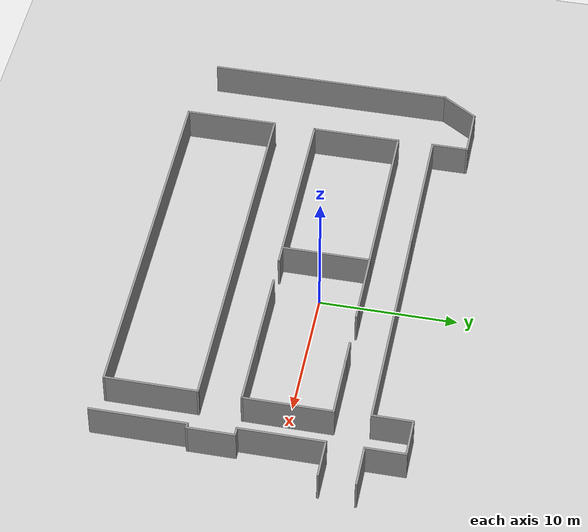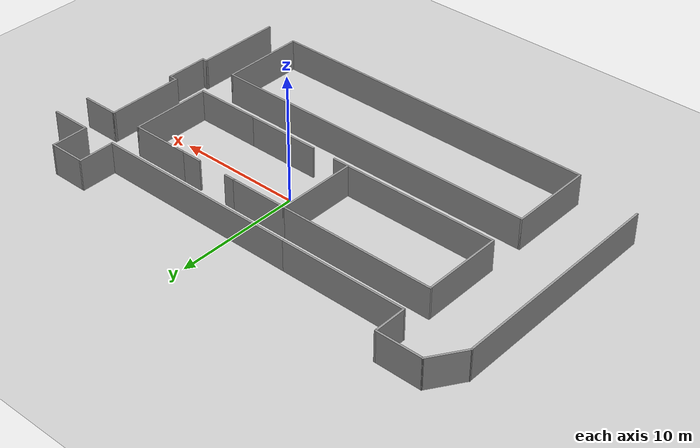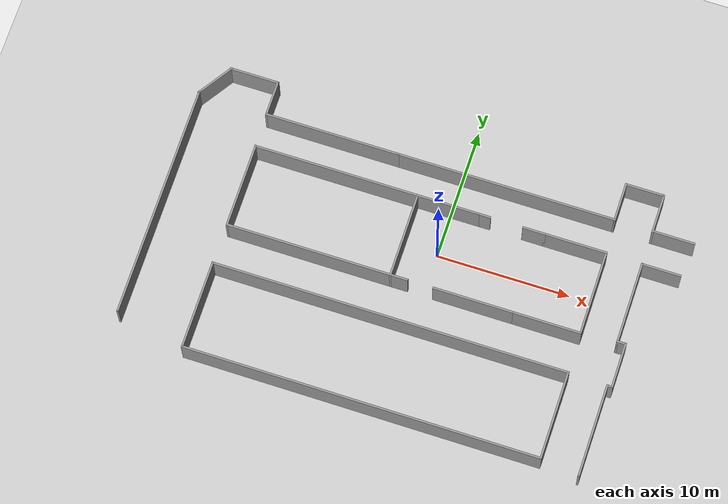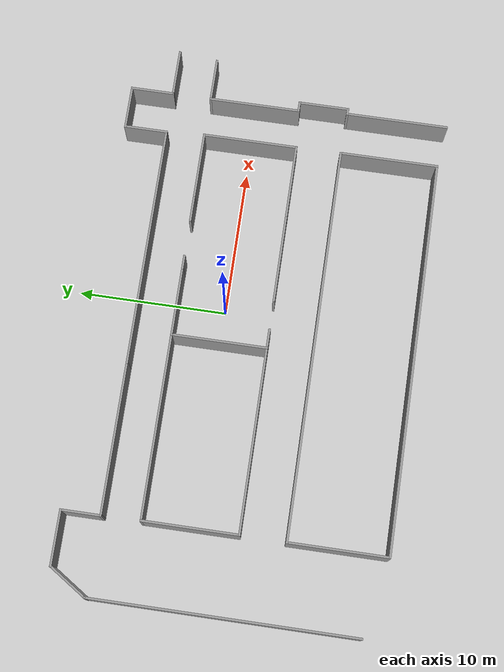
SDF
<sdf version="1.6">
 <world name="default">
  <light name="sun" type="directional">
   <pose>0 0 10 0 -0 0</pose>
   <diffuse>0.8 0.8 0.8 1</diffuse>
   <specular>0.2 0.2 0.2 1</specular>
   <attenuation>
    <range>1000</range>
    <constant>0.9</constant>
    <linear>0.01</linear>
    <quadratic>0.001</quadratic>
   </attenuation>
   <direction>-0.5 0.1 -0.9</direction>
  </light>
  <model name="ground_plane">
   <static>1</static>
   <link name="link">
    <collision name="collision">
     <geometry><plane><normal>0 0 1</normal><size>100 100</size></plane></geometry>
     <surface>
      <contact><collide_bitmask>65535</collide_bitmask></contact>
      <friction><ode><mu>100</mu><mu2>50</mu2></ode></friction>
     </surface>
    </collision>
    <visual name="visual">
     <cast_shadows>0</cast_shadows>
     <geometry><plane><normal>0 0 1</normal><size>100 100</size></plane></geometry>
     <material>
      <script><uri>file://media/materials/scripts/gazebo.material</uri><name>Gazebo/Grey</name></script>
     </material>
    </visual>
   </link>
  </model>
  <gravity>0 0 -9.8</gravity>
  <magnetic_field>6e-06 2.3e-05 -4.2e-05</magnetic_field>
  <atmosphere type="adiabatic"/>
  <physics name="default_physics" default="0" type="ode">
   <max_step_size>0.001</max_step_size>
   <real_time_factor>1</real_time_factor>
   <real_time_update_rate>1000</real_time_update_rate>
  </physics>
  <scene><ambient>0.4 0.4 0.4 1</ambient><background>0.7 0.7 0.7 1</background><shadows>1</shadows></scene>
  <audio><device>default</device></audio>
  <spherical_coordinates>
   <surface_model>EARTH_WGS84</surface_model>
   <latitude_deg>0</latitude_deg>
   <longitude_deg>0</longitude_deg>
   <elevation>0</elevation>
   <heading_deg>0</heading_deg>
  </spherical_coordinates>
  <model name="Sarkeys_Model">
   <pose>-1.35909 -2.27678 0 0 -0 0</pose>
   <link name="Wall_32">
    <collision name="Wall_32_Collision">
     <geometry><box><size>4.75 0.15 2.5</size></box></geometry>
     <pose>0 0 1.25 0 -0 0</pose>
    </collision>
    <visual name="Wall_32_Visual">
     <pose>0 0 1.25 0 -0 0</pose>
     <geometry><box><size>4.75 0.15 2.5</size></box></geometry>
     <material>
      <script><uri>file://media/materials/scripts/gazebo.material</uri><name>Gazebo/Grey</name></script>
      <ambient>1 1 1 1</ambient>
     </material>
     <meta><layer>0</layer></meta>
    </visual>
    <pose>1.13149 5.44774 0 0 -0 0</pose>
   </link>
   <link name="Wall_36">
    <collision name="Wall_36_Collision">
     <geometry><box><size>6.5 0.15 2.5</size></box></geometry>
     <pose>0 0 1.25 0 -0 0</pose>
    </collision>
    <visual name="Wall_36_Visual">
     <pose>0 0 1.25 0 -0 0</pose>
     <geometry><box><size>6.5 0.15 2.5</size></box></geometry>
     <material>
      <script><uri>file://media/materials/scripts/gazebo.material</uri><name>Gazebo/Grey</name></script>
      <ambient>1 1 1 1</ambient>
     </material>
     <meta><layer>0</layer></meta>
    </visual>
    <pose>-1.16851 2.27274 0 0 -0 -1.5708</pose>
   </link>
   <link name="Wall_48">
    <collision name="Wall_48_Collision">
     <geometry><box><size>16.5 0.15 2.5</size></box></geometry>
     <pose>0 0 1.25 0 -0 0</pose>
    </collision>
    <visual name="Wall_48_Visual">
     <pose>0 0 1.25 0 -0 0</pose>
     <geometry><box><size>16.5 0.15 2.5</size></box></geometry>
     <material>
      <script><uri>file://media/materials/scripts/gazebo.material</uri><name>Gazebo/Grey</name></script>
      <ambient>1 1 1 1</ambient>
     </material>
     <meta><layer>0</layer></meta>
    </visual>
    <pose>4.70026 8.04291 0 0 -0 0</pose>
   </link>
   <link name="Wall_49">
    <collision name="Wall_49_Collision">
     <geometry><box><size>3 0.15 2.5</size></box></geometry>
     <pose>0 0 1.25 0 -0 0</pose>
    </collision>
    <visual name="Wall_49_Visual">
     <pose>0 0 1.25 0 -0 0</pose>
     <geometry><box><size>3 0.15 2.5</size></box></geometry>
     <material>
      <script><uri>file://media/materials/scripts/gazebo.material</uri><name>Gazebo/Grey</name></script>
      <ambient>1 1 1 1</ambient>
     </material>
     <meta><layer>0</layer></meta>
    </visual>
    <pose>12.8753 9.46791 0 0 -0 1.5708</pose>
   </link>
   <link name="Wall_50">
    <collision name="Wall_50_Collision">
     <geometry><box><size>3 0.15 2.5</size></box></geometry>
     <pose>0 0 1.25 0 -0 0</pose>
    </collision>
    <visual name="Wall_50_Visual">
     <pose>0 0 1.25 0 -0 0</pose>
     <geometry><box><size>3 0.15 2.5</size></box></geometry>
     <material>
      <script><uri>file://media/materials/scripts/gazebo.material</uri><name>Gazebo/Grey</name></script>
      <ambient>1 1 1 1</ambient>
     </material>
     <meta><layer>0</layer></meta>
    </visual>
    <pose>14.3003 10.8929 0 0 -0 0</pose>
   </link>
   <link name="Wall_51">
    <collision name="Wall_51_Collision">
     <geometry><box><size>3 0.15 2.5</size></box></geometry>
     <pose>0 0 1.25 0 -0 0</pose>
    </collision>
    <visual name="Wall_51_Visual">
     <pose>0 0 1.25 0 -0 0</pose>
     <geometry><box><size>3 0.15 2.5</size></box></geometry>
     <material>
      <script><uri>file://media/materials/scripts/gazebo.material</uri><name>Gazebo/Grey</name></script>
      <ambient>1 1 1 1</ambient>
     </material>
     <meta><layer>0</layer></meta>
    </visual>
    <pose>15.7253 9.46791 0 0 -0 -1.5708</pose>
   </link>
   <link name="Wall_52">
    <collision name="Wall_52_Collision">
     <geometry><box><size>3.25 0.15 2.5</size></box></geometry>
     <pose>0 0 1.25 0 -0 0</pose>
    </collision>
    <visual name="Wall_52_Visual">
     <pose>0 0 1.25 0 -0 0</pose>
     <geometry><box><size>3.25 0.15 2.5</size></box></geometry>
     <material>
      <script><uri>file://media/materials/scripts/gazebo.material</uri><name>Gazebo/Grey</name></script>
      <ambient>1 1 1 1</ambient>
     </material>
     <meta><layer>0</layer></meta>
    </visual>
    <pose>17.2753 8.04291 0 0 -0 0</pose>
   </link>
   <link name="Wall_54">
    <collision name="Wall_54_Collision">
     <geometry><box><size>10.25 0.15 2.5</size></box></geometry>
     <pose>0 0 1.25 0 -0 0</pose>
    </collision>
    <visual name="Wall_54_Visual">
     <pose>0 0 1.25 0 -0 0</pose>
     <geometry><box><size>10.25 0.15 2.5</size></box></geometry>
     <material>
      <script><uri>file://media/materials/scripts/gazebo.material</uri><name>Gazebo/Grey</name></script>
      <ambient>1 1 1 1</ambient>
     </material>
     <meta><layer>0</layer></meta>
    </visual>
    <pose>-8.52474 8.04291 0 0 -0 3.14159</pose>
   </link>
   <link name="Wall_56">
    <collision name="Wall_56_Collision">
     <geometry><box><size>12.5 0.15 2.5</size></box></geometry>
     <pose>0 0 1.25 0 -0 0</pose>
    </collision>
    <visual name="Wall_56_Visual">
     <pose>0 0 1.25 0 -0 0</pose>
     <geometry><box><size>12.5 0.15 2.5</size></box></geometry>
     <material>
      <script><uri>file://media/materials/scripts/gazebo.material</uri><name>Gazebo/Grey</name></script>
      <ambient>1 1 1 1</ambient>
     </material>
     <meta><layer>0</layer></meta>
    </visual>
    <pose>-7.34351 5.44774 0 0 -0 3.14159</pose>
   </link>
   <link name="Wall_57">
    <collision name="Wall_57_Collision">
     <geometry><box><size>6.5 0.15 2.5</size></box></geometry>
     <pose>0 0 1.25 0 -0 0</pose>
    </collision>
    <visual name="Wall_57_Visual">
     <pose>0 0 1.25 0 -0 0</pose>
     <geometry><box><size>6.5 0.15 2.5</size></box></geometry>
     <material>
      <script><uri>file://media/materials/scripts/gazebo.material</uri><name>Gazebo/Grey</name></script>
      <ambient>1 1 1 1</ambient>
     </material>
     <meta><layer>0</layer></meta>
    </visual>
    <pose>-13.5185 2.27274 0 0 -0 -1.5708</pose>
   </link>
   <link name="Wall_58">
    <collision name="Wall_58_Collision">
     <geometry><box><size>13.75 0.15 2.5</size></box></geometry>
     <pose>0 0 1.25 0 -0 0</pose>
    </collision>
    <visual name="Wall_58_Visual">
     <pose>0 0 1.25 0 -0 0</pose>
     <geometry><box><size>13.75 0.15 2.5</size></box></geometry>
     <material>
      <script><uri>file://media/materials/scripts/gazebo.material</uri><name>Gazebo/Grey</name></script>
      <ambient>1 1 1 1</ambient>
     </material>
     <meta><layer>0</layer></meta>
    </visual>
    <pose>-6.71851 -0.902257 0 0 -0 0</pose>
   </link>
   <link name="Wall_62">
    <collision name="Wall_62_Collision">
     <geometry><box><size>4.75 0.15 2.5</size></box></geometry>
     <pose>0 0 1.25 0 -0 0</pose>
    </collision>
    <visual name="Wall_62_Visual">
     <pose>0 0 1.25 0 -0 0</pose>
     <geometry><box><size>4.75 0.15 2.5</size></box></geometry>
     <material>
      <script><uri>file://media/materials/scripts/gazebo.material</uri><name>Gazebo/Grey</name></script>
      <ambient>1 1 1 1</ambient>
     </material>
     <meta><layer>0</layer></meta>
    </visual>
    <pose>10.7315 5.44774 0 0 -0 0</pose>
   </link>
   <link name="Wall_63">
    <collision name="Wall_63_Collision">
     <geometry><box><size>6.5 0.15 2.5</size></box></geometry>
     <pose>0 0 1.25 0 -0 0</pose>
    </collision>
    <visual name="Wall_63_Visual">
     <pose>0 0 1.25 0 -0 0</pose>
     <geometry><box><size>6.5 0.15 2.5</size></box></geometry>
     <material>
      <script><uri>file://media/materials/scripts/gazebo.material</uri><name>Gazebo/Grey</name></script>
      <ambient>1 1 1 1</ambient>
     </material>
     <meta><layer>0</layer></meta>
    </visual>
    <pose>13.0315 2.27274 0 0 -0 -1.5708</pose>
   </link>
   <link name="Wall_64">
    <collision name="Wall_64_Collision">
     <geometry><box><size>5.25 0.15 2.5</size></box></geometry>
     <pose>0 0 1.25 0 -0 0</pose>
    </collision>
    <visual name="Wall_64_Visual">
     <pose>0 0 1.25 0 -0 0</pose>
     <geometry><box><size>5.25 0.15 2.5</size></box></geometry>
     <material>
      <script><uri>file://media/materials/scripts/gazebo.material</uri><name>Gazebo/Grey</name></script>
      <ambient>1 1 1 1</ambient>
     </material>
     <meta><layer>0</layer></meta>
    </visual>
    <pose>10.4815 -0.902257 0 0 -0 3.14159</pose>
   </link>
   <link name="Wall_70">
    <collision name="Wall_70_Collision">
     <geometry><box><size>17.75 0.15 2.5</size></box></geometry>
     <pose>0 0 1.25 0 -0 0</pose>
    </collision>
    <visual name="Wall_70_Visual">
     <pose>0 0 1.25 0 -0 0</pose>
     <geometry><box><size>17.75 0.15 2.5</size></box></geometry>
     <material>
      <script><uri>file://media/materials/scripts/gazebo.material</uri><name>Gazebo/Grey</name></script>
      <ambient>1 1 1 1</ambient>
     </material>
     <meta><layer>0</layer></meta>
    </visual>
    <pose>-18.7964 -0.628731 0 0 -0 -1.5708</pose>
   </link>
   <link name="Wall_73">
    <collision name="Wall_73_Collision">
     <geometry><box><size>2.75 0.15 2.5</size></box></geometry>
     <pose>0 0 1.25 0 -0 0</pose>
    </collision>
    <visual name="Wall_73_Visual">
     <pose>0 0 1.25 0 -0 0</pose>
     <geometry><box><size>2.75 0.15 2.5</size></box></geometry>
     <material>
      <script><uri>file://media/materials/scripts/gazebo.material</uri><name>Gazebo/Grey</name></script>
      <ambient>1 1 1 1</ambient>
     </material>
     <meta><layer>0</layer></meta>
    </visual>
    <pose>-13.5747 9.34291 0 0 -0 1.5708</pose>
   </link>
   <link name="Wall_74">
    <collision name="Wall_74_Collision">
     <geometry><box><size>3.75 0.15 2.5</size></box></geometry>
     <pose>0 0 1.25 0 -0 0</pose>
    </collision>
    <visual name="Wall_74_Visual">
     <pose>0 0 1.25 0 -0 0</pose>
     <geometry><box><size>3.75 0.15 2.5</size></box></geometry>
     <material>
      <script><uri>file://media/materials/scripts/gazebo.material</uri><name>Gazebo/Grey</name></script>
      <ambient>1 1 1 1</ambient>
     </material>
     <meta><layer>0</layer></meta>
    </visual>
    <pose>-15.3747 10.6429 0 0 -0 3.14159</pose>
   </link>
   <link name="Wall_75">
    <collision name="Wall_75_Collision">
     <geometry><box><size>3.10615 0.15 2.5</size></box></geometry>
     <pose>0 0 1.25 0 -0 0</pose>
    </collision>
    <visual name="Wall_75_Visual">
     <pose>0 0 1.25 0 -0 0</pose>
     <geometry><box><size>3.10615 0.15 2.5</size></box></geometry>
     <material>
      <script><uri>file://media/materials/scripts/gazebo.material</uri><name>Gazebo/Grey</name></script>
      <ambient>1 1 1 1</ambient>
     </material>
     <meta><layer>0</layer></meta>
    </visual>
    <pose>-17.9856 9.40709 0 0 -0 -2.15146</pose>
   </link>
   <link name="Wall_77">
    <collision name="Wall_77_Collision">
     <geometry><box><size>26.75 0.15 2.5</size></box></geometry>
     <pose>0 0 1.25 0 -0 0</pose>
    </collision>
    <visual name="Wall_77_Visual">
     <pose>0 0 1.25 0 -0 0</pose>
     <geometry><box><size>26.75 0.15 2.5</size></box></geometry>
     <material>
      <script><uri>file://media/materials/scripts/gazebo.material</uri><name>Gazebo/Grey</name></script>
      <ambient>1 1 1 1</ambient>
     </material>
     <meta><layer>0</layer></meta>
    </visual>
    <pose>-0.243055 -3.96346 0 0 -0 0</pose>
   </link>
   <link name="Wall_78">
    <collision name="Wall_78_Collision">
     <geometry><box><size>6.75 0.15 2.5</size></box></geometry>
     <pose>0 0 1.25 0 -0 0</pose>
    </collision>
    <visual name="Wall_78_Visual">
     <pose>0 0 1.25 0 -0 0</pose>
     <geometry><box><size>6.75 0.15 2.5</size></box></geometry>
     <material>
      <script><uri>file://media/materials/scripts/gazebo.material</uri><name>Gazebo/Grey</name></script>
      <ambient>1 1 1 1</ambient>
     </material>
     <meta><layer>0</layer></meta>
    </visual>
    <pose>13.0569 -7.26346 0 0 -0 -1.5708</pose>
   </link>
   <link name="Wall_81">
    <collision name="Wall_81_Collision">
     <geometry><box><size>26.75 0.15 2.5</size></box></geometry>
     <pose>0 0 1.25 0 -0 0</pose>
    </collision>
    <visual name="Wall_81_Visual">
     <pose>0 0 1.25 0 -0 0</pose>
     <geometry><box><size>26.75 0.15 2.5</size></box></geometry>
     <material>
      <script><uri>file://media/materials/scripts/gazebo.material</uri><name>Gazebo/Grey</name></script>
      <ambient>1 1 1 1</ambient>
     </material>
     <meta><layer>0</layer></meta>
    </visual>
    <pose>-0.243055 -10.5635 0 0 -0 3.14159</pose>
   </link>
   <link name="Wall_82">
    <collision name="Wall_82_Collision">
     <geometry><box><size>6.75 0.15 2.5</size></box></geometry>
     <pose>0 0 1.25 0 -0 0</pose>
    </collision>
    <visual name="Wall_82_Visual">
     <pose>0 0 1.25 0 -0 0</pose>
     <geometry><box><size>6.75 0.15 2.5</size></box></geometry>
     <material>
      <script><uri>file://media/materials/scripts/gazebo.material</uri><name>Gazebo/Grey</name></script>
      <ambient>1 1 1 1</ambient>
     </material>
     <meta><layer>0</layer></meta>
    </visual>
    <pose>-13.5431 -7.26346 0 0 -0 1.5708</pose>
   </link>
   <link name="Wall_84">
    <collision name="Wall_84_Collision">
     <geometry><box><size>6.25 0.15 2.5</size></box></geometry>
     <pose>0 0 1.25 0 -0 0</pose>
    </collision>
    <visual name="Wall_84_Visual">
     <pose>0 0 1.25 0 -0 0</pose>
     <geometry><box><size>6.25 0.15 2.5</size></box></geometry>
     <material>
      <script><uri>file://media/materials/scripts/gazebo.material</uri><name>Gazebo/Grey</name></script>
      <ambient>1 1 1 1</ambient>
     </material>
     <meta><layer>0</layer></meta>
    </visual>
    <pose>15.7093 2.35709 0 0 -0 -1.5708</pose>
   </link>
   <link name="Wall_85">
    <collision name="Wall_85_Collision">
     <geometry><box><size>0.75 0.15 2.5</size></box></geometry>
     <pose>0 0 1.25 0 -0 0</pose>
    </collision>
    <visual name="Wall_85_Visual">
     <pose>0 0 1.25 0 -0 0</pose>
     <geometry><box><size>0.75 0.15 2.5</size></box></geometry>
     <material>
      <script><uri>file://media/materials/scripts/gazebo.material</uri><name>Gazebo/Grey</name></script>
      <ambient>1 1 1 1</ambient>
     </material>
     <meta><layer>0</layer></meta>
    </visual>
    <pose>16.0093 -0.692908 0 0 -0 0</pose>
   </link>
   <link name="Wall_86">
    <collision name="Wall_86_Collision">
     <geometry><box><size>3.5 0.15 2.5</size></box></geometry>
     <pose>0 0 1.25 0 -0 0</pose>
    </collision>
    <visual name="Wall_86_Visual">
     <pose>0 0 1.25 0 -0 0</pose>
     <geometry><box><size>3.5 0.15 2.5</size></box></geometry>
     <material>
      <script><uri>file://media/materials/scripts/gazebo.material</uri><name>Gazebo/Grey</name></script>
      <ambient>1 1 1 1</ambient>
     </material>
     <meta><layer>0</layer></meta>
    </visual>
    <pose>16.3093 -2.36791 0 0 -0 -1.5708</pose>
   </link>
   <link name="Wall_87">
    <collision name="Wall_87_Collision">
     <geometry><box><size>0.5 0.15 2.5</size></box></geometry>
     <pose>0 0 1.25 0 -0 0</pose>
    </collision>
    <visual name="Wall_87_Visual">
     <pose>0 0 1.25 0 -0 0</pose>
     <geometry><box><size>0.5 0.15 2.5</size></box></geometry>
     <material>
      <script><uri>file://media/materials/scripts/gazebo.material</uri><name>Gazebo/Grey</name></script>
      <ambient>1 1 1 1</ambient>
     </material>
     <meta><layer>0</layer></meta>
    </visual>
    <pose>16.1343 -4.04291 0 0 -0 3.14159</pose>
   </link>
   <link name="Wall_88">
    <collision name="Wall_88_Collision">
     <geometry><box><size>7 0.15 2.5</size></box></geometry>
     <pose>0 0 1.25 0 -0 0</pose>
    </collision>
    <visual name="Wall_88_Visual">
     <pose>0 0 1.25 0 -0 0</pose>
     <geometry><box><size>7 0.15 2.5</size></box></geometry>
     <material>
      <script><uri>file://media/materials/scripts/gazebo.material</uri><name>Gazebo/Grey</name></script>
      <ambient>1 1 1 1</ambient>
     </material>
     <meta><layer>0</layer></meta>
    </visual>
    <pose>15.9593 -7.46791 0 0 -0 -1.5708</pose>
   </link>
   <link name="Wall_90">
    <collision name="Wall_90_Collision">
     <geometry><box><size>3 0.15 2.5</size></box></geometry>
     <pose>0 0 1.25 0 -0 0</pose>
    </collision>
    <visual name="Wall_90_Visual">
     <pose>0 0 1.25 0 -0 0</pose>
     <geometry><box><size>3 0.15 2.5</size></box></geometry>
     <material>
      <script><uri>file://media/materials/scripts/gazebo.material</uri><name>Gazebo/Grey</name></script>
      <ambient>1 1 1 1</ambient>
     </material>
     <meta><layer>0</layer></meta>
    </visual>
    <pose>17.1343 5.40709 0 0 -0 0</pose>
   </link>
   <link name="Wall_92">
    <collision name="Wall_92_Collision">
     <geometry><box><size>1 0.15 2.5</size></box></geometry>
     <pose>0 0 1.25 0 -0 0</pose>
    </collision>
    <visual name="Wall_92_Visual">
     <pose>0 0 1.25 0 -0 0</pose>
     <geometry><box><size>1 0.15 2.5</size></box></geometry>
     <material>
      <script><uri>file://media/materials/scripts/gazebo.material</uri><name>Gazebo/Grey</name></script>
      <ambient>1 1 1 1</ambient>
     </material>
     <meta><layer>0</layer></meta>
    </visual>
    <pose>3.85649 5.44774 0 0 -0 0</pose>
   </link>
   <link name="Wall_94">
    <collision name="Wall_94_Collision">
     <geometry><box><size>1.75 0.15 2.5</size></box></geometry>
     <pose>0 0 1.25 0 -0 0</pose>
    </collision>
    <visual name="Wall_94_Visual">
     <pose>0 0 1.25 0 -0 0</pose>
     <geometry><box><size>1.75 0.15 2.5</size></box></geometry>
     <material>
      <script><uri>file://media/materials/scripts/gazebo.material</uri><name>Gazebo/Grey</name></script>
      <ambient>1 1 1 1</ambient>
     </material>
     <meta><layer>0</layer></meta>
    </visual>
    <pose>7.63149 5.44774 0 0 -0 3.14159</pose>
   </link>
   <link name="Wall_96">
    <collision name="Wall_96_Collision">
     <geometry><box><size>6 0.15 2.5</size></box></geometry>
     <pose>0 0 1.25 0 -0 0</pose>
    </collision>
    <visual name="Wall_96_Visual">
     <pose>0 0 1.25 0 -0 0</pose>
     <geometry><box><size>6 0.15 2.5</size></box></geometry>
     <material>
      <script><uri>file://media/materials/scripts/gazebo.material</uri><name>Gazebo/Grey</name></script>
      <ambient>1 1 1 1</ambient>
     </material>
     <meta><layer>0</layer></meta>
    </visual>
    <pose>5.00649 -0.902257 0 0 -0 3.14159</pose>
   </link>
   <static>1</static>
  </model>
 </world>
</sdf>
